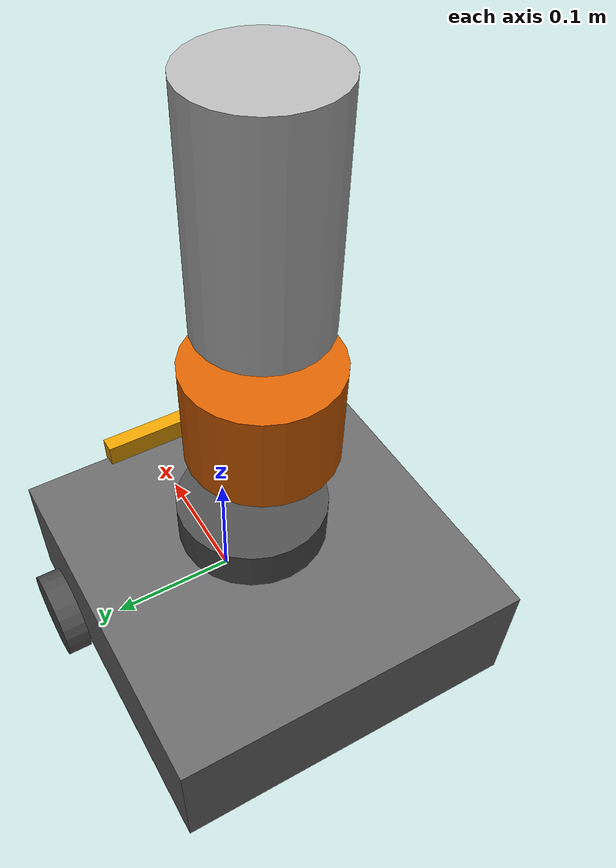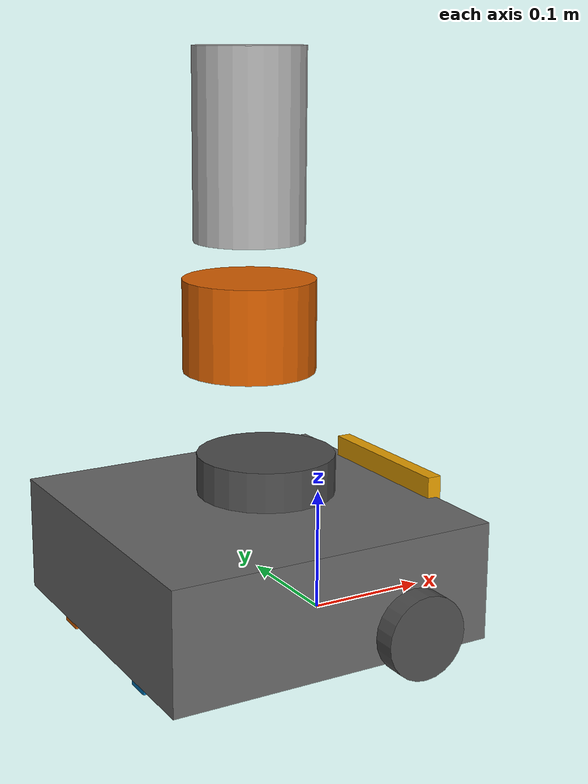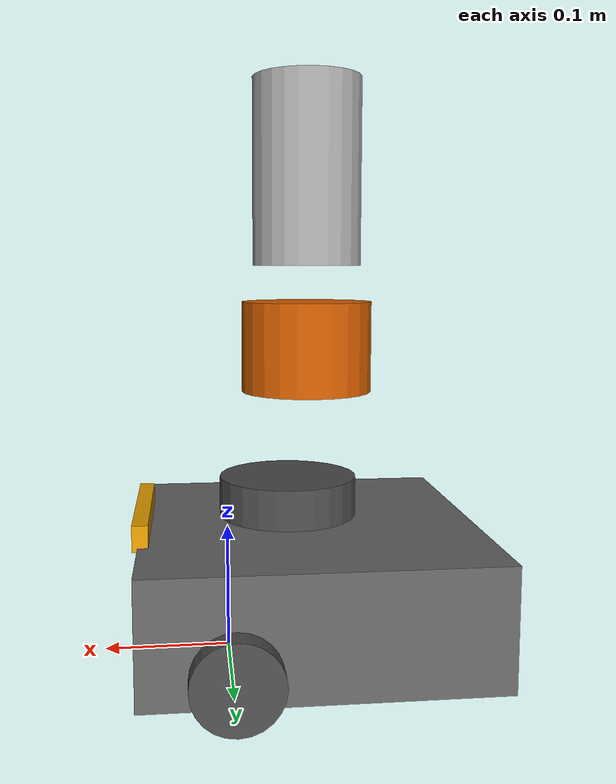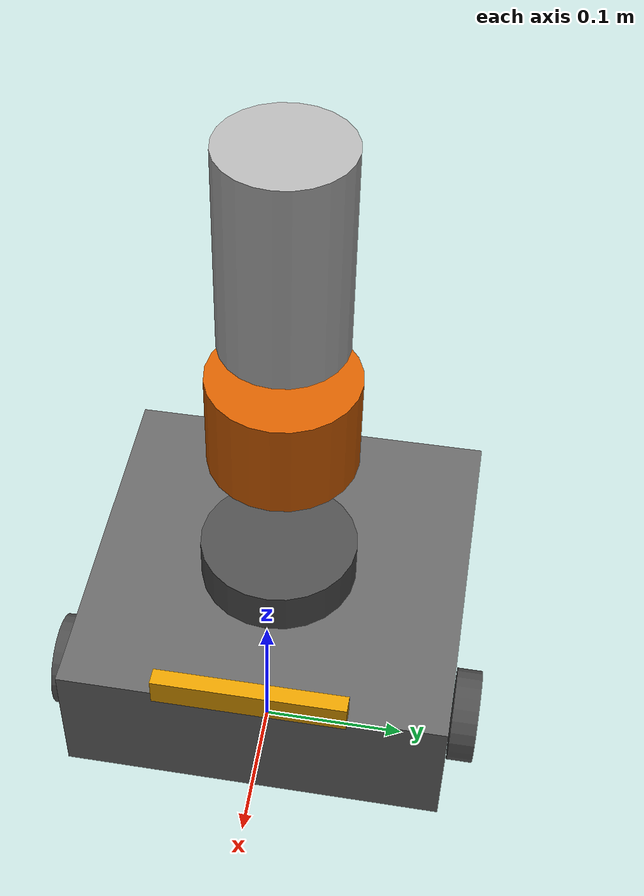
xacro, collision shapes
<?xml version="1.0" ?>
<robot name="turtlebot3_waffle" xmlns:xacro="http://ros.org/wiki/xacro">

  <!-- Init colour -->
  <material name="black">
      <color rgba="0.0 0.0 0.0 1.0"/>
  </material>

  <material name="dark">
    <color rgba="0.3 0.3 0.3 1.0"/>
  </material>

  <material name="light_black">
    <color rgba="0.4 0.4 0.4 1.0"/>
  </material>

  <material name="blue">
    <color rgba="0.0 0.0 0.8 1.0"/>
  </material>

  <material name="green">
    <color rgba="0.0 0.8 0.0 1.0"/>
  </material>

  <material name="grey">
    <color rgba="0.5 0.5 0.5 1.0"/>
  </material>

  <material name="orange">
    <color rgba="1.0 0.4235 0.0392 1.0"/>
  </material>

  <material name="brown">
    <color rgba="0.8706 0.8118 0.7647 1.0"/>
  </material>

  <material name="red">
    <color rgba="0.8 0.0 0.0 1.0"/>
  </material>

  <material name="white">
    <color rgba="1.0 1.0 1.0 1.0"/>
  </material>

  <link name="base_footprint"/>

  <joint name="base_joint" type="fixed">
    <parent link="base_footprint"/>
    <child link="base_link" />
    <origin xyz="0 0 0.010" rpy="0 0 0"/>
  </joint>

  <link name="base_link">
    <visual>
      <origin xyz="-0.064 0 0.0" rpy="0 0 0"/>
      <geometry>
        <mesh filename="package://turtlebot3_gazebo/models/turtlebot3_waffle/meshes/waffle_base.dae" scale="0.001 0.001 0.001"/>
      </geometry>
      <material name="light_black"/>
    </visual>

    <collision>
      <origin xyz="-0.064 0 0.047" rpy="0 0 0"/>
      <geometry>
        <box size="0.266 0.266 0.094"/>
      </geometry>
    </collision>

    <inertial>
      <origin xyz="0 0 0" rpy="0 0 0"/>
      <mass value="1.3729096e+00"/>
      <inertia ixx="8.7002718e-03" ixy="-4.7576583e-05" ixz="1.1160499e-04"
               iyy="8.6195418e-03" iyz="-3.5422299e-06"
               izz="1.4612727e-02" />
    </inertial>
  </link>

  <joint name="wheel_left_joint" type="continuous">
    <parent link="base_link"/>
    <child link="wheel_left_link"/>
    <origin xyz="0.0 0.144 0.023" rpy="-1.57 0 0"/>
    <axis xyz="0 0 1"/>
  </joint>

  <link name="wheel_left_link">
    <visual>
      <origin xyz="0 0 0" rpy="1.57 0 0"/>
      <geometry>
        <mesh filename="package://turtlebot3_gazebo/models/turtlebot3_waffle/meshes/left_tire.dae" scale="0.001 0.001 0.001"/>
      </geometry>
      <material name="dark"/>
    </visual>

    <collision>
      <origin xyz="0 0 0" rpy="0 0 0"/>
      <geometry>
        <cylinder length="0.018" radius="0.033"/>
      </geometry>
    </collision>

    <inertial>
      <origin xyz="0 0 0" />
      <mass value="2.8498940e-02" />
      <inertia ixx="1.1175580e-05" ixy="-4.2369783e-11" ixz="-5.9381719e-09"
               iyy="1.1192413e-05" iyz="-1.4400107e-11"
               izz="2.0712558e-05" />
      </inertial>
  </link>

  <joint name="wheel_right_joint" type="continuous">
    <parent link="base_link"/>
    <child link="wheel_right_link"/>
    <origin xyz="0.0 -0.144 0.023" rpy="-1.57 0 0"/>
    <axis xyz="0 0 1"/>
  </joint>

  <link name="wheel_right_link">
    <visual>
      <origin xyz="0 0 0" rpy="1.57 0 0"/>
      <geometry>
        <mesh filename="package://turtlebot3_gazebo/models/turtlebot3_waffle/meshes/right_tire.dae" scale="0.001 0.001 0.001"/>
      </geometry>
      <material name="dark"/>
    </visual>

    <collision>
      <origin xyz="0 0 0" rpy="0 0 0"/>
      <geometry>
        <cylinder length="0.018" radius="0.033"/>
      </geometry>
    </collision>

    <inertial>
      <origin xyz="0 0 0" />
      <mass value="2.8498940e-02" />
      <inertia ixx="1.1175580e-05" ixy="-4.2369783e-11" ixz="-5.9381719e-09"
               iyy="1.1192413e-05" iyz="-1.4400107e-11"
               izz="2.0712558e-05" />
      </inertial>
  </link>

  <joint name="caster_back_right_joint" type="fixed">
    <parent link="base_link"/>
    <child link="caster_back_right_link"/>
    <origin xyz="-0.177 -0.064 -0.004" rpy="-1.57 0 0"/>
  </joint>

  <link name="caster_back_right_link">
    <collision>
      <origin xyz="0 0.001 0" rpy="0 0 0"/>
      <geometry>
        <box size="0.030 0.009 0.020"/>
      </geometry>
    </collision>

    <inertial>
      <origin xyz="0 0 0" />
      <mass value="0.005" />
      <inertia ixx="0.001" ixy="0.0" ixz="0.0"
               iyy="0.001" iyz="0.0"
               izz="0.001" />
    </inertial>
  </link>

  <joint name="caster_back_left_joint" type="fixed">
    <parent link="base_link"/>
    <child link="caster_back_left_link"/>
    <origin xyz="-0.177 0.064 -0.004" rpy="-1.57 0 0"/>
  </joint>

  <link name="caster_back_left_link">
    <collision>
      <origin xyz="0 0.001 0" rpy="0 0 0"/>
      <geometry>
        <box size="0.030 0.009 0.020"/>
      </geometry>
    </collision>

    <inertial>
      <origin xyz="0 0 0" />
      <mass value="0.005" />
      <inertia ixx="0.001" ixy="0.0" ixz="0.0"
               iyy="0.001" iyz="0.0"
               izz="0.001" />
    </inertial>
  </link>

  <joint name="imu_joint" type="fixed">
    <parent link="base_link"/>
    <child link="imu_link"/>
    <origin xyz="0.0 0 0.068" rpy="0 0 0"/>
  </joint>

  <link name="imu_link"/>

  <joint name="scan_joint" type="fixed">
    <parent link="base_link"/>
    <child link="base_scan"/>
    <origin xyz="-0.064 0 0.122" rpy="0 0 0"/>
  </joint>

  <link name="base_scan">
    <visual>
      <origin xyz="0 0 0" rpy="0 0 0"/>
      <geometry>
        <mesh filename="package://turtlebot3_gazebo/models/turtlebot3_waffle/meshes/lds.dae" scale="0.001 0.001 0.001"/>
      </geometry>
      <material name="dark"/>
    </visual>

    <collision>
      <origin xyz="0.015 0 -0.0065" rpy="0 0 0"/>
      <geometry>
        <cylinder length="0.0315" radius="0.055"/>
      </geometry>
    </collision>

    <inertial>
      <mass value="0.114" />
      <origin xyz="0 0 0" />
      <inertia ixx="0.001" ixy="0.0" ixz="0.0"
               iyy="0.001" iyz="0.0"
               izz="0.001" />
    </inertial>
  </link>

  <joint name="camera_joint" type="fixed">
    <origin xyz="0.064 -0.065 0.094" rpy="0 0 0"/>
    <parent link="base_link"/>
    <child link="realsense_link"/>
  </joint>

  <link name="realsense_link">
    <visual>
     <origin xyz="0 0 0" rpy="1.57 0 1.57"/>
      <geometry>
       <mesh filename="package://turtlebot3_gazebo/models/turtlebot3_waffle/meshes/r200.dae" />
      </geometry>
    </visual>
    <collision>
      <origin xyz="0.003 0.065 0.007" rpy="0 0 0"/>
      <geometry>
        <box size="0.012 0.132 0.020"/>
      </geometry>
    </collision>

    <!-- This inertial field needs doesn't contain reliable data!! -->
  </link>

  <joint name="camera_rgb_joint" type="fixed">
    <origin xyz="0.005 0.018 0.013" rpy="-1.57 0 -1.57"/>
    <parent link="realsense_link"/>
    <child link="camera_rgb_frame"/>
  </joint>
  <link name="camera_rgb_frame"/>

  <joint name="camera_rgb_optical_joint" type="fixed">
    <origin xyz="0 0 0" rpy="-1.57 0 -1.57"/>
    <parent link="camera_rgb_frame"/>
    <child link="camera_rgb_optical_frame"/>
  </joint>
  <link name="camera_rgb_optical_frame"/>

  <joint name="realsense_depth_joint" type="fixed">
    <origin xyz="0.005 0.028 0.013" rpy="-1.57 0 -1.57"/>
    <parent link="realsense_link"/>
    <child link="realsense_depth_frame"/>
  </joint>
  <link name="realsense_depth_frame"/>

  <joint name="camera_depth_optical_joint" type="fixed">
    <origin xyz="0 0 0" rpy="-1.57 0 -1.57"/>
    <parent link="realsense_depth_frame"/>
    <child link="camera_depth_optical_frame"/>
  </joint>
  <link name="camera_depth_optical_frame"/>

  <!-- Velodyne part in xacro -->
  <xacro:arg name="gpu" default="false"/>
  <xacro:property name="gpu" value="$(arg gpu)" />
  <xacro:arg name="organize_cloud" default="false"/>
  <xacro:property name="organize_cloud" value="$(arg organize_cloud)" />

  <xacro:include filename="$(find turtlebot3_gazebo)/urdf/VLP-16.urdf.xacro"/>
  <xacro:VLP-16 parent="base_link" name="velodyne" topic="/velodyne_points" organize_cloud="${organize_cloud}" hz="10" samples="440" gpu="${gpu}">
    <origin xyz="-0.064 0 0.2" rpy="0 0 0" />
  </xacro:VLP-16>

  <xacro:include filename="$(find turtlebot3_gazebo)/urdf/HDL-32E.urdf.xacro"/>
  <xacro:HDL-32E parent="base_link" name="velodyne2" topic="/velodyne_points2" organize_cloud="${organize_cloud}" hz="10" samples="220" gpu="${gpu}">
    <origin xyz="-0.064 0 0.3" rpy="0 0 0" />
  </xacro:HDL-32E>

</robot>

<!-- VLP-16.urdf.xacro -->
<robot xmlns:xacro="http://www.ros.org/wiki/xacro" name="VLP-16">
  <xacro:property name="M_PI" value="3.1415926535897931" />
  <xacro:macro name="VLP-16" params="*origin parent:=base_link name:=velodyne tf_prefix:='' topic:=/velodyne_points organize_cloud:=false hz:=10 lasers:=16 samples:=1875 collision_range:=0.01 min_range:=0.01 max_range:=50.0 noise:=0.008 min_angle:=-${M_PI} max_angle:=${M_PI} gpu:=false">

    <joint name="${name}_base_mount_joint" type="fixed">
      <xacro:insert_block name="origin" />
      <parent link="${parent}"/>
      <child link="${name}_base_link"/>
    </joint>

    <link name="${name}_base_link">
      <inertial>
        <mass value="0.83"/>
        <origin xyz="0 0 0.03585"/>
        <inertia ixx="${(0.83 * (3.0*0.0516*0.0516 + 0.0717*0.0717)) / 12.0}" ixy="0" ixz="0"
          iyy="${(0.83 * (3.0*0.0516*0.0516 + 0.0717*0.0717)) / 12.0}" iyz="0"
          izz="${0.5 * 0.83 * (0.0516*0.0516)}"/>
      </inertial>
      <visual>
        <geometry>
          <mesh filename="package://turtlebot3_gazebo/models/turtlebot3_waffle/meshes/VLP16_base_1.dae" />
        </geometry>
      </visual>
      <visual>
        <geometry>
          <mesh filename="package://turtlebot3_gazebo/models/turtlebot3_waffle/meshes/VLP16_base_2.dae" />
        </geometry>
      </visual>
      <collision>
        <origin rpy="0 0 0" xyz="0 0 0.03585"/>
        <geometry>
          <cylinder radius="0.0516" length="0.0717"/>
        </geometry>
      </collision>
    </link>

    <joint name="${name}_base_scan_joint" type="fixed" >
      <origin xyz="0 0 0.0377" rpy="0 0 0" />
      <parent link="${name}_base_link" />
      <child link="${name}"/>
    </joint>

    <link name="${name}">
      <inertial>
        <mass value="0.01"/>
        <origin xyz="0 0 0"/>
        <inertia ixx="1e-7" ixy="0" ixz="0" iyy="1e-7" iyz="0" izz="1e-7"/>
      </inertial>
      <visual>
        <origin xyz="0 0 -0.0377" />
        <geometry>
          <mesh filename="package://turtlebot3_gazebo/models/turtlebot3_waffle/meshes/VLP16_scan.dae" />
        </geometry>
      </visual>
      <collision>
        <geometry>
          <sphere radius="0"/>
        </geometry>
      </collision>
    </link>

    <!-- Gazebo requires the velodyne_gazebo_plugins package -->
    <gazebo reference="${name}">
      <xacro:if value="${gpu}">
        <sensor type="gpu_ray" name="${name}-VLP16">
          <pose>0 0 0 0 0 0</pose>
          <visualize>false</visualize>
          <update_rate>${hz}</update_rate>
          <ray>
            <scan>
              <horizontal>
                <samples>${samples}</samples>
                <resolution>1</resolution>
                <min_angle>${min_angle}</min_angle>
                <max_angle>${max_angle}</max_angle>
              </horizontal>
              <vertical>
                <samples>${lasers}</samples>
                <resolution>1</resolution>
                <min_angle>-${15.0*M_PI/180.0}</min_angle>
                <max_angle> ${15.0*M_PI/180.0}</max_angle>
              </vertical>
            </scan>
            <range>
              <min>${collision_range}</min>
              <max>${max_range+1}</max>
              <resolution>0.001</resolution>
            </range>
            <noise>
              <type>gaussian</type>
              <mean>0.0</mean>
              <stddev>0.0</stddev>
            </noise>
          </ray>
          <plugin name="gazebo_ros_laser_controller" filename="libgazebo_ros_velodyne_laser.so">
            <ros>
              <namespace>/${name}</namespace>
              <remapping>~/out:=${topic}</remapping>
            </ros>
            <tf_prefix>${tf_prefix}</tf_prefix>
            <frame_name>${name}</frame_name>
            <organize_cloud>${organize_cloud}</organize_cloud>
            <min_range>${min_range}</min_range>
            <max_range>${max_range}</max_range>
            <gaussian_noise>${noise}</gaussian_noise>
          </plugin>
        </sensor>
      </xacro:if>
      <xacro:unless value="${gpu}">
        <sensor type="ray" name="${name}-VLP16">
          <pose>0 0 0 0 0 0</pose>
          <visualize>false</visualize>
          <update_rate>${hz}</update_rate>
          <ray>
            <scan>
              <horizontal>
                <samples>${samples}</samples>
                <resolution>1</resolution>
                <min_angle>${min_angle}</min_angle>
                <max_angle>${max_angle}</max_angle>
              </horizontal>
              <vertical>
                <samples>${lasers}</samples>
                <resolution>1</resolution>
                <min_angle>-${15.0*M_PI/180.0}</min_angle>
                <max_angle> ${15.0*M_PI/180.0}</max_angle>
              </vertical>
            </scan>
            <range>
              <min>${collision_range}</min>
              <max>${max_range+1}</max>
              <resolution>0.001</resolution>
            </range>
            <noise>
              <type>gaussian</type>
              <mean>0.0</mean>
              <stddev>0.0</stddev>
            </noise>
          </ray>
          <plugin name="gazebo_ros_laser_controller" filename="libgazebo_ros_velodyne_laser.so">
            <ros>
              <namespace>/${name}</namespace>
              <remapping>~/out:=${topic}</remapping>
            </ros>
            <tf_prefix>${tf_prefix}</tf_prefix>
            <frame_name>${name}</frame_name>
            <organize_cloud>${organize_cloud}</organize_cloud>
            <min_range>${min_range}</min_range>
            <max_range>${max_range}</max_range>
            <gaussian_noise>${noise}</gaussian_noise>
          </plugin>
        </sensor>
      </xacro:unless>
    </gazebo>

  </xacro:macro>
</robot>

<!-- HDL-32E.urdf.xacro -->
<robot xmlns:xacro="http://www.ros.org/wiki/xacro" name="HDL-32E">
  <xacro:property name="M_PI" value="3.1415926535897931" />
  <xacro:macro name="HDL-32E" params="*origin parent:=base_link name:=velodyne tf_prefix:='' topic:=/velodyne_points organize_cloud:=false hz:=10 lasers:=32 samples:=2187 collision_range:=0.3 min_range:=0.9 max_range:=130.0 noise:=0.008 min_angle:=-${M_PI} max_angle:=${M_PI} gpu:=false">

    <joint name="${name}_base_mount_joint" type="fixed">
      <xacro:insert_block name="origin" />
      <parent link="${parent}"/>
      <child link="${name}_base_link"/>
    </joint>

    <link name="${name}_base_link">
      <inertial>
        <mass value="1.0"/>
        <origin xyz="0 0 0.07212"/>
        <inertia ixx="${(1.0 * (3.0*0.04267*0.04267 + 0.14424*0.14424)) / 12.0}" ixy="0" ixz="0"
          iyy="${(1.0 * (3.0*0.04267*0.04267 + 0.14424*0.14424)) / 12.0}" iyz="0"
          izz="${0.5 * 1.0 * (0.04267*0.04267)}"/>
      </inertial>
      <visual>
        <geometry>
          <mesh filename="package://turtlebot3_gazebo/models/turtlebot3_waffle/meshes/HDL32E_base.dae" />
        </geometry>
      </visual>
      <collision>
        <origin rpy="0 0 0" xyz="0 0 0.07212"/>
        <geometry>
          <cylinder radius="0.04267" length="0.14424"/>
        </geometry>
      </collision>
    </link>

    <joint name="${name}_base_scan_joint" type="fixed" >
      <origin xyz="0 0 0.09081" rpy="0 0 0" />
      <parent link="${name}_base_link" />
      <child link="${name}"/>
    </joint>

    <link name="${name}">
      <inertial>
        <mass value="0.01"/>
        <origin xyz="0 0 0"/>
        <inertia ixx="1e-7" ixy="0" ixz="0" iyy="1e-7" iyz="0" izz="1e-7"/>
      </inertial>
      <visual>
        <origin xyz="0 0 -0.09081" rpy="0 0 0" />
        <geometry>
          <mesh filename="package://turtlebot3_gazebo/models/turtlebot3_waffle/meshes/HDL32E_scan.dae" />
        </geometry>
      </visual>
      <collision>
        <geometry>
          <sphere radius="0"/>
        </geometry>
      </collision>
    </link>

    <!-- Gazebo requires the velodyne_gazebo_plugins package -->
    <gazebo reference="${name}">
      <xacro:if value="${gpu}">
        <sensor type="gpu_ray" name="${name}-HDL32E">
          <pose>0 0 0 0 0 0</pose>
          <visualize>false</visualize>
          <update_rate>${hz}</update_rate>
          <ray>
            <scan>
              <horizontal>
                <samples>${samples}</samples>
                <resolution>1</resolution>
                <min_angle>${min_angle}</min_angle>
                <max_angle>${max_angle}</max_angle>
              </horizontal>
              <vertical>
                <samples>${lasers}</samples>
                <resolution>1</resolution>
                <min_angle>-${30.67*M_PI/180.0}</min_angle>
                <max_angle> ${10.67*M_PI/180.0}</max_angle>
              </vertical>
            </scan>
            <range>
              <min>${collision_range}</min>
              <max>${max_range+1}</max>
              <resolution>0.001</resolution>
            </range>
            <noise>
              <type>gaussian</type>
              <mean>0.0</mean>
              <stddev>0.0</stddev>
            </noise>
          </ray>
          <plugin name="gazebo_ros_laser_controller" filename="libgazebo_ros_velodyne_laser.so">
            <ros>
              <namespace>/${name}</namespace>
              <remapping>~/out:=${topic}</remapping>
            </ros>
            <tf_prefix>${tf_prefix}</tf_prefix>
            <frame_name>${name}</frame_name>
            <organize_cloud>${organize_cloud}</organize_cloud>
            <min_range>${min_range}</min_range>
            <max_range>${max_range}</max_range>
            <gaussian_noise>${noise}</gaussian_noise>
          </plugin>
        </sensor>
      </xacro:if>
      <xacro:unless value="${gpu}">
        <sensor type="ray" name="${name}-HDL32E">
          <pose>0 0 0 0 0 0</pose>
          <visualize>false</visualize>
          <update_rate>${hz}</update_rate>
          <ray>
            <scan>
              <horizontal>
                <samples>${samples}</samples>
                <resolution>1</resolution>
                <min_angle>${min_angle}</min_angle>
                <max_angle>${max_angle}</max_angle>
              </horizontal>
              <vertical>
                <samples>${lasers}</samples>
                <resolution>1</resolution>
                <min_angle>-${30.67*M_PI/180.0}</min_angle>
                <max_angle> ${10.67*M_PI/180.0}</max_angle>
              </vertical>
            </scan>
            <range>
              <min>${collision_range}</min>
              <max>${max_range+1}</max>
              <resolution>0.001</resolution>
            </range>
            <noise>
              <type>gaussian</type>
              <mean>0.0</mean>
              <stddev>0.0</stddev>
            </noise>
          </ray>
          <plugin name="gazebo_ros_laser_controller" filename="libgazebo_ros_velodyne_laser.so">
            <ros>
              <namespace>/${name}</namespace>
              <remapping>~/out:=${topic}</remapping>
            </ros>
            <tf_prefix>${tf_prefix}</tf_prefix>
            <frame_name>${name}</frame_name>
            <organize_cloud>${organize_cloud}</organize_cloud>
            <min_range>${min_range}</min_range>
            <max_range>${max_range}</max_range>
            <gaussian_noise>${noise}</gaussian_noise>
          </plugin>
        </sensor>
      </xacro:unless>
    </gazebo>

  </xacro:macro>
</robot>
